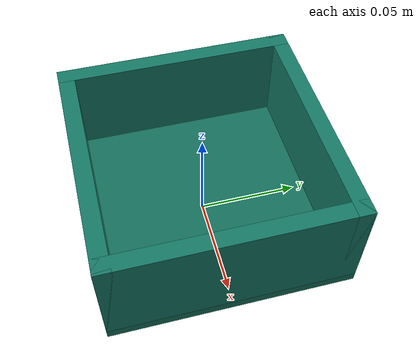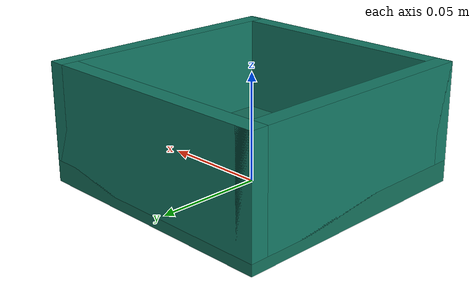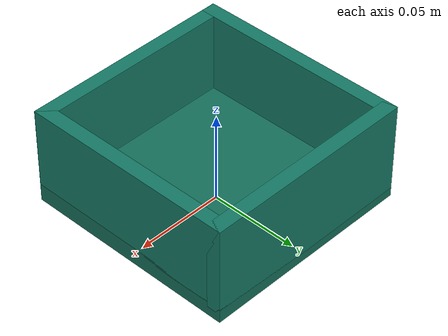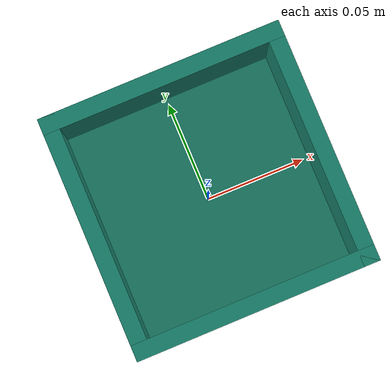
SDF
<?xml version="1.0"?>
<sdf version="1.6">
  <model name="place_bin">
    <static>true</static>
    <link name="bin_link">
      <collision name="base_collision">
        <pose>0 0 0.005 0 0 0</pose>
        <geometry><box><size>0.12 0.12 0.01</size></box></geometry>
      </collision>
      <visual name="base_visual">
        <pose>0 0 0.005 0 0 0</pose>
        <geometry><box><size>0.12 0.12 0.01</size></box></geometry>
        <material><ambient>0.05 0.24 0.20 1</ambient><diffuse>0.08 0.44 0.36 1</diffuse></material>
      </visual>

      <collision name="front_wall_collision">
        <pose>0 -0.056 0.03 0 0 0</pose>
        <geometry><box><size>0.12 0.008 0.05</size></box></geometry>
      </collision>
      <visual name="front_wall_visual">
        <pose>0 -0.056 0.03 0 0 0</pose>
        <geometry><box><size>0.12 0.008 0.05</size></box></geometry>
        <material><ambient>0.05 0.26 0.22 0.92</ambient><diffuse>0.08 0.48 0.40 0.92</diffuse></material>
      </visual>

      <collision name="back_wall_collision">
        <pose>0 0.056 0.03 0 0 0</pose>
        <geometry><box><size>0.12 0.008 0.05</size></box></geometry>
      </collision>
      <visual name="back_wall_visual">
        <pose>0 0.056 0.03 0 0 0</pose>
        <geometry><box><size>0.12 0.008 0.05</size></box></geometry>
        <material><ambient>0.05 0.26 0.22 0.92</ambient><diffuse>0.08 0.48 0.40 0.92</diffuse></material>
      </visual>

      <collision name="left_wall_collision">
        <pose>-0.056 0 0.03 0 0 0</pose>
        <geometry><box><size>0.008 0.12 0.05</size></box></geometry>
      </collision>
      <visual name="left_wall_visual">
        <pose>-0.056 0 0.03 0 0 0</pose>
        <geometry><box><size>0.008 0.12 0.05</size></box></geometry>
        <material><ambient>0.05 0.26 0.22 0.92</ambient><diffuse>0.08 0.48 0.40 0.92</diffuse></material>
      </visual>

      <collision name="right_wall_collision">
        <pose>0.056 0 0.03 0 0 0</pose>
        <geometry><box><size>0.008 0.12 0.05</size></box></geometry>
      </collision>
      <visual name="right_wall_visual">
        <pose>0.056 0 0.03 0 0 0</pose>
        <geometry><box><size>0.008 0.12 0.05</size></box></geometry>
        <material><ambient>0.05 0.26 0.22 0.92</ambient><diffuse>0.08 0.48 0.40 0.92</diffuse></material>
      </visual>
    </link>
  </model>
</sdf>
